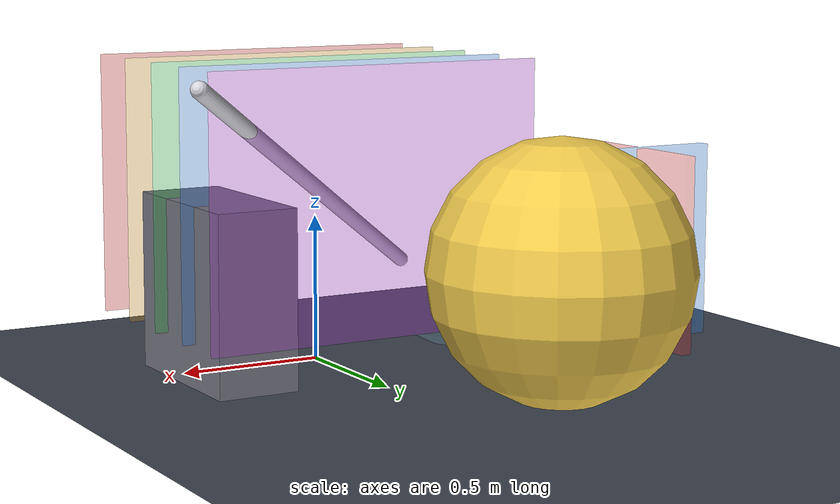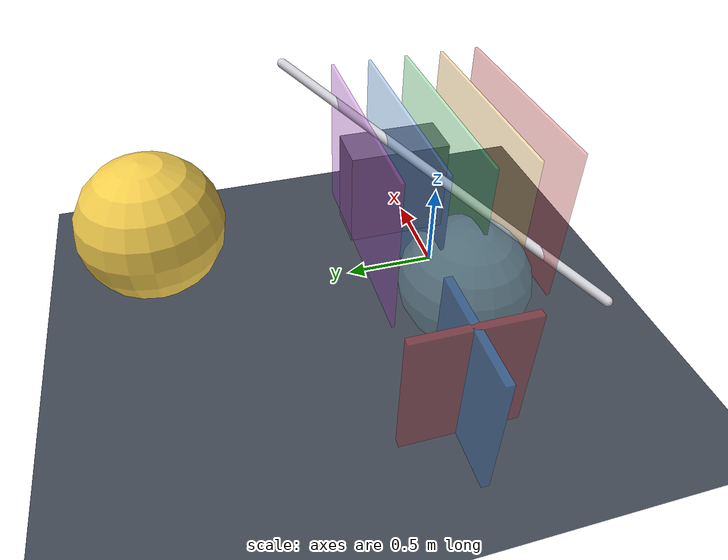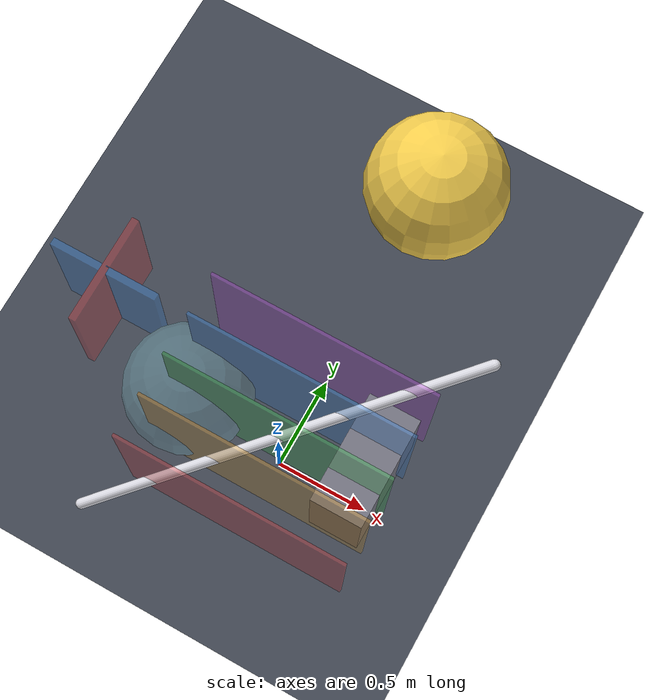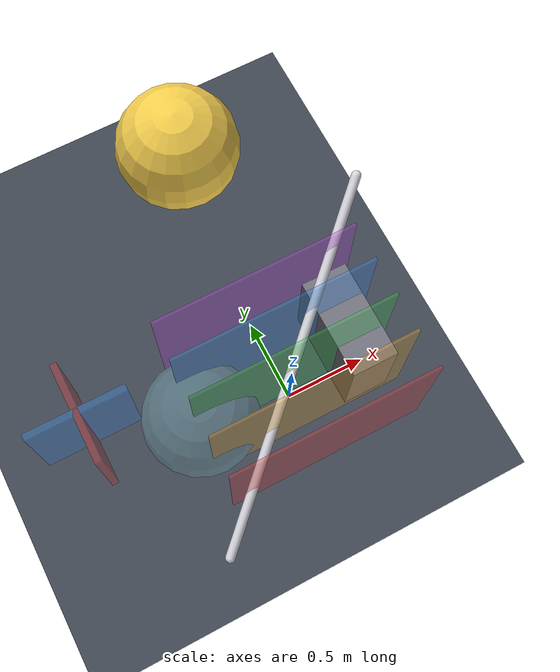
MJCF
<mujoco model="transparency">
  <compiler angle="degree" autolimits="true"/>

  <visual>
    <headlight ambient="0.25 0.25 0.25" diffuse="0.35 0.35 0.35" specular="0.3 0.3 0.3"/>
    <quality shadowsize="2048" numslices="32" numstacks="16"/>
    <map znear="0.02" zfar="40" shadowclip="1.2" shadowscale="0.7"/>
  </visual>

  <asset>
    <texture name="grid" type="2d" builtin="checker" width="512" height="512"
             rgb1="0.20 0.22 0.26" rgb2="0.30 0.33 0.38"/>
    <material name="grid" texture="grid" texrepeat="1 1" texuniform="true"/>

    <material name="pane_0" rgba="0.90 0.20 0.20 0.35" specular="0.4" shininess="0.6"/>
    <material name="pane_1" rgba="0.95 0.65 0.15 0.35" specular="0.4" shininess="0.6"/>
    <material name="pane_2" rgba="0.20 0.80 0.30 0.35" specular="0.4" shininess="0.6"/>
    <material name="pane_3" rgba="0.20 0.55 0.95 0.35" specular="0.4" shininess="0.6"/>
    <material name="pane_4" rgba="0.75 0.25 0.90 0.35" specular="0.4" shininess="0.6"/>

    <material name="glass" rgba="0.55 0.85 0.90 0.30" specular="0.9" shininess="0.9"/>
    <material name="solid" rgba="0.85 0.85 0.88 1" specular="0.7" shininess="0.8"/>
    <material name="slab" rgba="0.45 0.45 0.50 1" specular="0.2" shininess="0.3"/>
    <material name="far" rgba="0.95 0.80 0.30 1" specular="0.5" shininess="0.6"/>
  </asset>

  <worldbody>
    <light name="sun" type="directional" pos="2 -3 4" dir="-0.35 0.5 -1"
           diffuse="0.7 0.7 0.7" specular="0.3 0.3 0.3" castshadow="true"/>

    <geom name="floor" type="plane" size="0 0 0.05" material="grid"/>

    <geom name="pane_0" type="box" pos="0 -0.44 0.60" size="0.60 0.008 0.45" material="pane_0"/>
    <geom name="pane_1" type="box" pos="0 -0.22 0.60" size="0.60 0.008 0.45" material="pane_1"/>
    <geom name="pane_2" type="box" pos="0  0.00 0.60" size="0.60 0.008 0.45" material="pane_2"/>
    <geom name="pane_3" type="box" pos="0  0.22 0.60" size="0.60 0.008 0.45" material="pane_3"/>
    <geom name="pane_4" type="box" pos="0  0.44 0.60" size="0.60 0.008 0.45" material="pane_4"/>

    <geom name="opaque_slab" type="box" pos="0.42 0.11 0.30" size="0.14 0.30 0.30" material="slab"/>

    <geom name="rod_diag" type="capsule" fromto="-0.75 -0.70 0.18 0.75 0.70 1.02" size="0.028"
          material="solid"/>

    <geom name="glass_ball" type="sphere" pos="-0.55 0.05 0.34" size="0.34" material="glass"/>

    <geom name="far_ball" type="sphere" pos="0.05 1.55 0.55" size="0.38" material="far"/>

    <geom name="tie_a" type="box" pos="-1.15 0.30 0.35" size="0.02 0.30 0.35" material="pane_0"/>
    <geom name="tie_b" type="box" pos="-1.15 0.30 0.35" size="0.30 0.02 0.35" material="pane_3"/>

    <camera name="transparency" pos="0.15 -2.40 1.10" xyaxes="1 0 0 0 0.35 0.94"/>
  </worldbody>
</mujoco>
